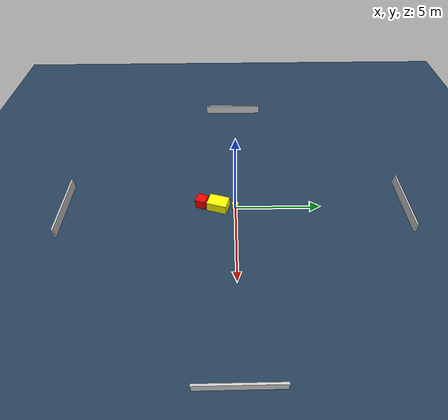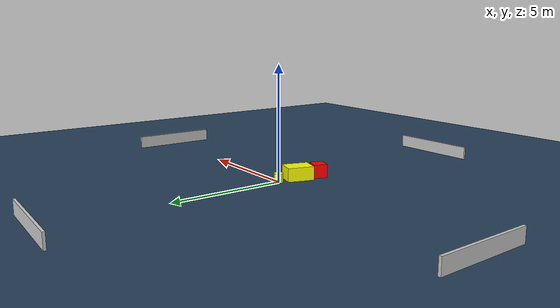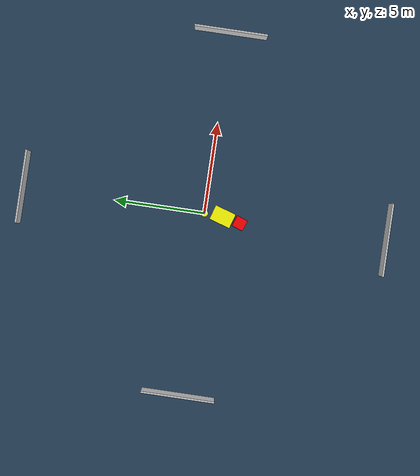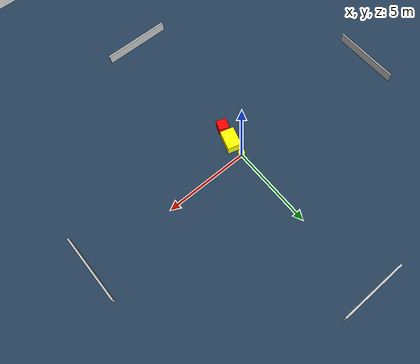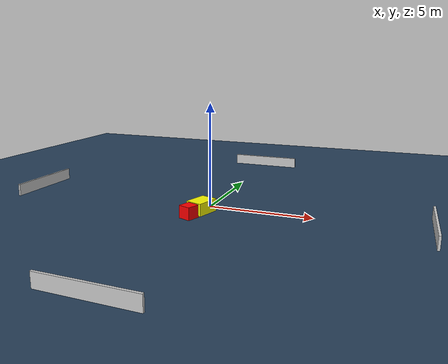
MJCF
<?xml version="1.0" ?>
<mujoco model="generated_environment">
  <option timestep="0.01" integrator="RK4" cone="elliptic"/>
  <default>
    <geom density="1"/>
  </default>
  <asset>
    <texture builtin="gradient" height="3072" name="skybox" rgb1="0.3 0.5 0.7" rgb2="0 0 0" type="skybox" width="512"/>
    <texture builtin="checker" height="300" name="groundplane" rgb1="0.2 0.3 0.4" rgb2="0.1 0.2 0.3" type="2d" width="300"/>
    <material name="groundplane" reflectance="0.2" texrepeat="5 5" texture="groundplane"/>
  </asset>
  <worldbody>
    <light dir="0 0 -1" directional="true" pos="0 0 1.5"/>
    <geom condim="3" friction="0.5 0.005 0.001" material="groundplane" name="floor" pos="0 0 0" size="0 0 0.05" type="plane"/>
    <body name="walls">
      <geom name="wall_1" condim="4" pos="-10.0 0.0 0.3" rgba="0.800000011920929 0.800000011920929 0.800000011920929 1.0" size="0.05 2.0 0.3" type="box"/>
      <geom name="wall_2" condim="4" pos="10.0 0.0 0.3" rgba="0.800000011920929 0.800000011920929 0.800000011920929 1.0" size="0.05 2.0 0.3" type="box"/>
      <geom name="wall_3" condim="4" pos="0.0 -10.0 0.3" rgba="0.800000011920929 0.800000011920929 0.800000011920929 1.0" size="2.0 0.05 0.3" type="box"/>
      <geom name="wall_4" condim="4" pos="0.0 10.0 0.3" rgba="0.800000011920929 0.800000011920929 0.800000011920929 1.0" size="2.0 0.05 0.3" type="box"/>
    </body>
    <body name="robot">
      <joint name="joint_x" type="slide" pos="0 0 0" axis="1 0 0"/>
      <joint name="joint_y" type="slide" pos="0 0 0" axis="0 1 0"/>
      <geom name="robot" type="cylinder" pos="0.0 0.0 0.2" size="0.2 0.2 0.0" mass="5.0" friction="1.0 0.005 0.0001" condim="4" rgba="1.0 1.0 0.0 1.0"/>
    </body>
    <body name="obstacle_1_movable">
      <geom name="obstacle_1_movable" condim="4" pos="-0.050015941746420524 -0.9971178550130675 0.3" euler="0 0 162.84098482321946" friction="0.0 0.005 0.001" rgba="1.0 1.0 0.0 1.0" size="0.41023977925229654 0.5876464785357852 0.3" type="box" mass="0.1"/>
      <joint type="free"/>
    </body>
    <body name="obstacle_2_static">
      <geom name="obstacle_2_static" condim="4" pos="-0.2640597391838818 -1.9672761413495166 0.3" euler="0 0 339.72752118017496" friction="0.0 0.005 0.001" rgba="1.0 0.0 0.0 1.0" size="0.30520919207137165 0.30973888390763693 0.3" type="box"/>
    </body>
  </worldbody>
  <actuator>
    <motor name="actuator_x" joint="joint_x" gear="1" ctrlrange="-1 1"/>
    <motor name="actuator_y" joint="joint_y" gear="1" ctrlrange="-1 1"/>
  </actuator>
</mujoco>
